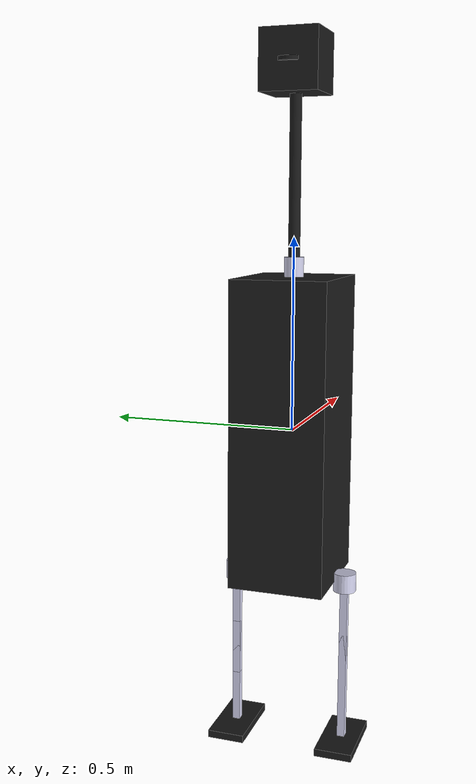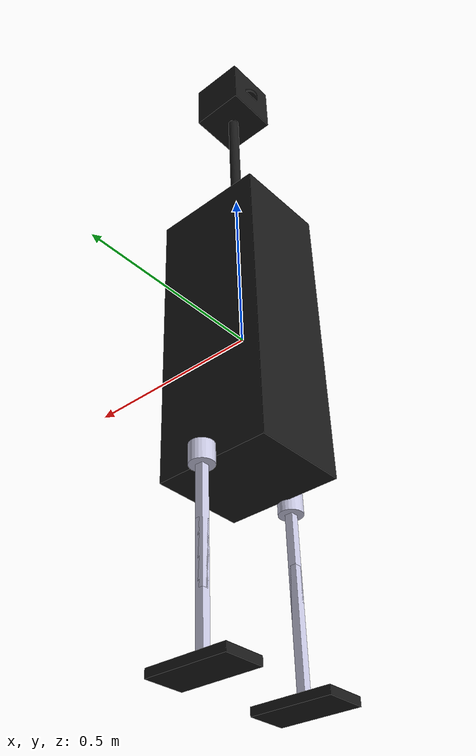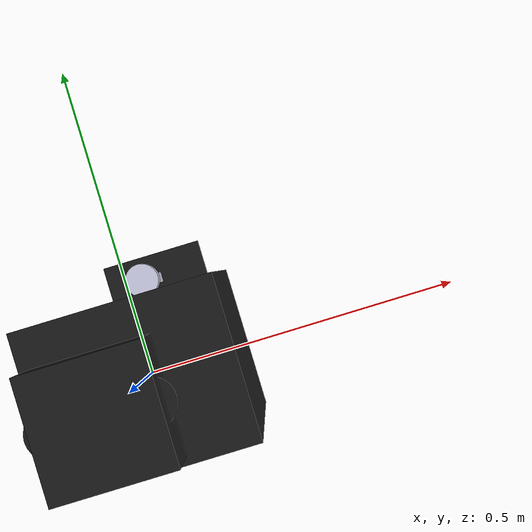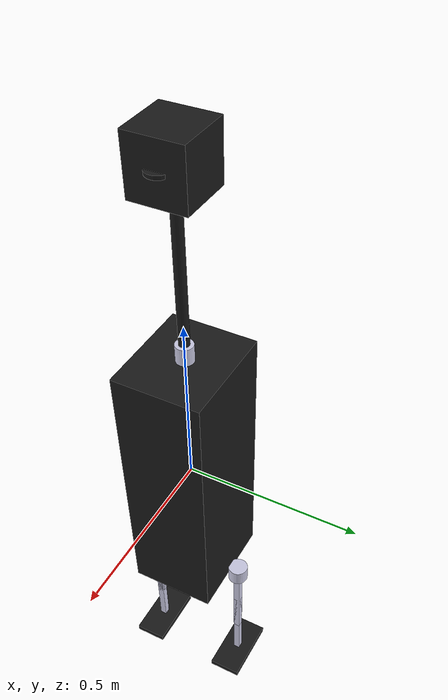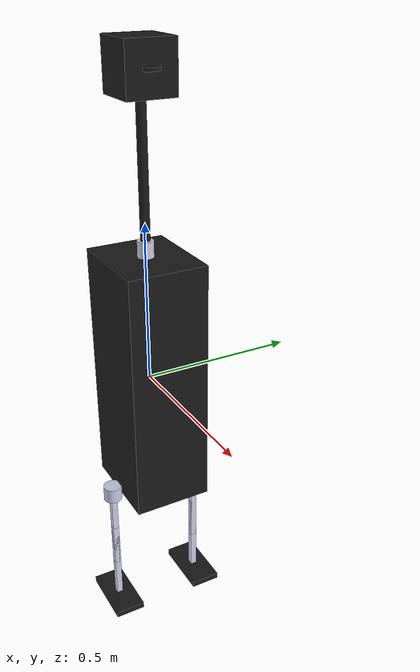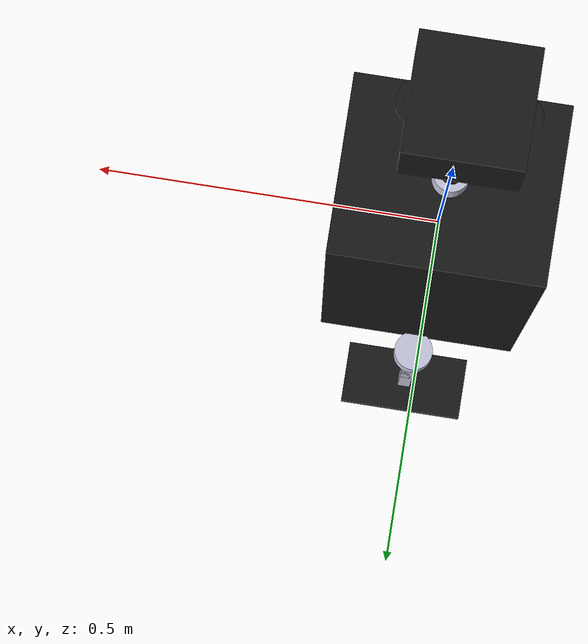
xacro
<?xml version="1.0"?>
<robot name="emu_droid" xmlns:xacro="http://www.ros.org/wiki/xacro">

  <!-- Properties and Constants -->
  <xacro:property name="M_PI" value="3.14159265359"/>
  <xacro:property name="body_height" value="0.8"/>
  <xacro:property name="body_width" value="0.3"/>
  <xacro:property name="body_depth" value="0.25"/>
  <xacro:property name="leg_length" value="0.6"/>
  <xacro:property name="foot_size" value="0.2"/>
  <xacro:property name="neck_length" value="0.4"/>
  <xacro:property name="head_size" value="0.15"/>
  <xacro:property name="eye_baseline" value="0.12"/>

  <!-- Material Definitions -->
  <material name="aluminum">
    <color rgba="0.8 0.8 0.9 1.0"/>
  </material>

  <material name="black_plastic">
    <color rgba="0.1 0.1 0.1 1.0"/>
  </material>

  <material name="camera_black">
    <color rgba="0.0 0.0 0.0 1.0"/>
  </material>

  <material name="servo_blue">
    <color rgba="0.0 0.3 0.8 1.0"/>
  </material>

  <!-- Macro for 2020 Aluminum Extrusion -->
  <xacro:macro name="aluminum_beam" params="name length">
    <link name="${name}">
      <visual>
        <geometry>
          <box size="0.02 0.02 ${length}"/>
        </geometry>
        <material name="aluminum"/>
      </visual>
      <collision>
        <geometry>
          <box size="0.02 0.02 ${length}"/>
        </geometry>
      </collision>
      <inertial>
        <mass value="0.1"/>
        <inertia ixx="0.001" iyy="0.001" izz="0.001" ixy="0" ixz="0" iyz="0"/>
      </inertial>
    </link>
  </xacro:macro>

  <!-- Macro for SG90 Servo -->
  <xacro:macro name="sg90_servo" params="name">
    <link name="${name}">
      <visual>
        <geometry>
          <box size="0.023 0.012 0.029"/>
        </geometry>
        <material name="servo_blue"/>
      </visual>
      <collision>
        <geometry>
          <box size="0.023 0.012 0.029"/>
        </geometry>
      </collision>
      <inertial>
        <mass value="0.009"/>
        <inertia ixx="0.00001" iyy="0.00001" izz="0.00001" ixy="0" ixz="0" iyz="0"/>
      </inertial>
    </link>
  </xacro:macro>

  <!-- Base Link (Main Body) -->
  <link name="base_link">
    <visual>
      <geometry>
        <box size="${body_width} ${body_depth} ${body_height}"/>
      </geometry>
      <material name="black_plastic"/>
    </visual>
    <collision>
      <geometry>
        <box size="${body_width} ${body_depth} ${body_height}"/>
      </geometry>
    </collision>
    <inertial>
      <mass value="5.0"/>
      <inertia ixx="0.5" iyy="0.5" izz="0.3" ixy="0" ixz="0" iyz="0"/>
      <origin xyz="0 0 0"/>
    </inertial>
  </link>

  <!-- Left Leg Assembly -->
  <link name="left_hip">
    <visual>
      <origin xyz="0 0 0" rpy="0 0 0"/>
      <geometry>
        <cylinder radius="0.03" length="0.05"/>
      </geometry>
      <material name="aluminum"/>
    </visual>
    <collision>
      <geometry>
        <cylinder radius="0.03" length="0.05"/>
      </geometry>
    </collision>
    <inertial>
      <mass value="0.2"/>
      <inertia ixx="0.001" iyy="0.001" izz="0.001" ixy="0" ixz="0" iyz="0"/>
    </inertial>
  </link>

  <!-- Left Upper Leg (2020 Aluminum) -->
  <xacro:aluminum_beam name="left_upper_leg" length="${leg_length/2}"/>

  <!-- Left Lower Leg (2020 Aluminum) -->
  <xacro:aluminum_beam name="left_lower_leg" length="${leg_length/2}"/>

  <!-- Left Foot -->
  <link name="left_foot">
    <visual>
      <geometry>
        <box size="${foot_size} ${foot_size/2} 0.02"/>
      </geometry>
      <material name="black_plastic"/>
    </visual>
    <collision>
      <geometry>
        <box size="${foot_size} ${foot_size/2} 0.02"/>
      </geometry>
    </collision>
    <inertial>
      <mass value="0.3"/>
      <inertia ixx="0.001" iyy="0.001" izz="0.001" ixy="0" ixz="0" iyz="0"/>
    </inertial>
  </link>

  <!-- Right Leg Assembly (Mirror of Left) -->
  <link name="right_hip">
    <visual>
      <origin xyz="0 0 0" rpy="0 0 0"/>
      <geometry>
        <cylinder radius="0.03" length="0.05"/>
      </geometry>
      <material name="aluminum"/>
    </visual>
    <collision>
      <geometry>
        <cylinder radius="0.03" length="0.05"/>
      </geometry>
    </collision>
    <inertial>
      <mass value="0.2"/>
      <inertia ixx="0.001" iyy="0.001" izz="0.001" ixy="0" ixz="0" iyz="0"/>
    </inertial>
  </link>

  <xacro:aluminum_beam name="right_upper_leg" length="${leg_length/2}"/>
  <xacro:aluminum_beam name="right_lower_leg" length="${leg_length/2}"/>

  <link name="right_foot">
    <visual>
      <geometry>
        <box size="${foot_size} ${foot_size/2} 0.02"/>
      </geometry>
      <material name="black_plastic"/>
    </visual>
    <collision>
      <geometry>
        <box size="${foot_size} ${foot_size/2} 0.02"/>
      </geometry>
    </collision>
    <inertial>
      <mass value="0.3"/>
      <inertia ixx="0.001" iyy="0.001" izz="0.001" ixy="0" ixz="0" iyz="0"/>
    </inertial>
  </link>

  <!-- Neck Assembly -->
  <link name="neck_base">
    <visual>
      <geometry>
        <cylinder radius="0.025" length="0.05"/>
      </geometry>
      <material name="aluminum"/>
    </visual>
    <collision>
      <geometry>
        <cylinder radius="0.025" length="0.05"/>
      </geometry>
    </collision>
    <inertial>
      <mass value="0.1"/>
      <inertia ixx="0.001" iyy="0.001" izz="0.001" ixy="0" ixz="0" iyz="0"/>
    </inertial>
  </link>

  <link name="neck_segment">
    <visual>
      <geometry>
        <cylinder radius="0.015" length="${neck_length}"/>
      </geometry>
      <material name="black_plastic"/>
    </visual>
    <collision>
      <geometry>
        <cylinder radius="0.015" length="${neck_length}"/>
      </geometry>
    </collision>
    <inertial>
      <mass value="0.2"/>
      <inertia ixx="0.001" iyy="0.001" izz="0.001" ixy="0" ixz="0" iyz="0"/>
    </inertial>
  </link>

  <!-- Head Assembly -->
  <link name="head">
    <visual>
      <geometry>
        <box size="${head_size} ${head_size} ${head_size}"/>
      </geometry>
      <material name="black_plastic"/>
    </visual>
    <collision>
      <geometry>
        <box size="${head_size} ${head_size} ${head_size}"/>
      </geometry>
    </collision>
    <inertial>
      <mass value="0.8"/>
      <inertia ixx="0.01" iyy="0.01" izz="0.01" ixy="0" ixz="0" iyz="0"/>
    </inertial>
  </link>

  <!-- Left Eye Assembly -->
  <link name="left_eye_platform">
    <visual>
      <geometry>
        <cylinder radius="0.03" length="0.01"/>
      </geometry>
      <material name="black_plastic"/>
    </visual>
    <collision>
      <geometry>
        <cylinder radius="0.03" length="0.01"/>
      </geometry>
    </collision>
    <inertial>
      <mass value="0.05"/>
      <inertia ixx="0.0001" iyy="0.0001" izz="0.0001" ixy="0" ixz="0" iyz="0"/>
    </inertial>
  </link>

  <link name="left_camera">
    <visual>
      <origin xyz="0 0 0" rpy="0 0 0"/>
      <geometry>
        <box size="0.025 0.025 0.009"/>
      </geometry>
      <material name="camera_black"/>
    </visual>
    <collision>
      <geometry>
        <box size="0.025 0.025 0.009"/>
      </geometry>
    </collision>
    <inertial>
      <mass value="0.003"/>
      <inertia ixx="0.00001" iyy="0.00001" izz="0.00001" ixy="0" ixz="0" iyz="0"/>
    </inertial>
  </link>

  <!-- Right Eye Assembly -->
  <link name="right_eye_platform">
    <visual>
      <geometry>
        <cylinder radius="0.03" length="0.01"/>
      </geometry>
      <material name="black_plastic"/>
    </visual>
    <collision>
      <geometry>
        <cylinder radius="0.03" length="0.01"/>
      </geometry>
    </collision>
    <inertial>
      <mass value="0.05"/>
      <inertia ixx="0.0001" iyy="0.0001" izz="0.0001" ixy="0" ixz="0" iyz="0"/>
    </inertial>
  </link>

  <link name="right_camera">
    <visual>
      <origin xyz="0 0 0" rpy="0 0 0"/>
      <geometry>
        <box size="0.025 0.025 0.009"/>
      </geometry>
      <material name="camera_black"/>
    </visual>
    <collision>
      <geometry>
        <box size="0.025 0.025 0.009"/>
      </geometry>
    </collision>
    <inertial>
      <mass value="0.003"/>
      <inertia ixx="0.00001" iyy="0.00001" izz="0.00001" ixy="0" ixz="0" iyz="0"/>
    </inertial>
  </link>

  <!-- Joint Definitions -->

  <!-- Hip Joints -->
  <joint name="left_hip_joint" type="revolute">
    <parent link="base_link"/>
    <child link="left_hip"/>
    <origin xyz="0 ${body_depth/2 + 0.025} ${-body_height/2}" rpy="0 0 0"/>
    <axis xyz="1 0 0"/>
    <limit lower="-1.57" upper="1.57" effort="10" velocity="5"/>
  </joint>

  <joint name="right_hip_joint" type="revolute">
    <parent link="base_link"/>
    <child link="right_hip"/>
    <origin xyz="0 ${-body_depth/2 - 0.025} ${-body_height/2}" rpy="0 0 0"/>
    <axis xyz="1 0 0"/>
    <limit lower="-1.57" upper="1.57" effort="10" velocity="5"/>
  </joint>

  <!-- Knee Joints -->
  <joint name="left_knee_joint" type="revolute">
    <parent link="left_hip"/>
    <child link="left_upper_leg"/>
    <origin xyz="0 0 ${-leg_length/4}" rpy="0 0 0"/>
    <axis xyz="1 0 0"/>
    <limit lower="-2.0" upper="0.1" effort="10" velocity="5"/>
  </joint>

  <joint name="right_knee_joint" type="revolute">
    <parent link="right_hip"/>
    <child link="right_upper_leg"/>
    <origin xyz="0 0 ${-leg_length/4}" rpy="0 0 0"/>
    <axis xyz="1 0 0"/>
    <limit lower="-2.0" upper="0.1" effort="10" velocity="5"/>
  </joint>

  <!-- Ankle Joints -->
  <joint name="left_ankle_joint" type="revolute">
    <parent link="left_upper_leg"/>
    <child link="left_lower_leg"/>
    <origin xyz="0 0 ${-leg_length/4}" rpy="0 0 0"/>
    <axis xyz="1 0 0"/>
    <limit lower="-0.5" upper="1.5" effort="10" velocity="5"/>
  </joint>

  <joint name="right_ankle_joint" type="revolute">
    <parent link="right_upper_leg"/>
    <child link="right_lower_leg"/>
    <origin xyz="0 0 ${-leg_length/4}" rpy="0 0 0"/>
    <axis xyz="1 0 0"/>
    <limit lower="-0.5" upper="1.5" effort="10" velocity="5"/>
  </joint>

  <!-- Foot Joints -->
  <joint name="left_foot_joint" type="revolute">
    <parent link="left_lower_leg"/>
    <child link="left_foot"/>
    <origin xyz="0 0 ${-leg_length/4}" rpy="0 0 0"/>
    <axis xyz="1 0 0"/>
    <limit lower="-0.5" upper="0.5" effort="5" velocity="5"/>
  </joint>

  <joint name="right_foot_joint" type="revolute">
    <parent link="right_lower_leg"/>
    <child link="right_foot"/>
    <origin xyz="0 0 ${-leg_length/4}" rpy="0 0 0"/>
    <axis xyz="1 0 0"/>
    <limit lower="-0.5" upper="0.5" effort="5" velocity="5"/>
  </joint>

  <!-- Neck Joints -->
  <joint name="neck_base_joint" type="revolute">
    <parent link="base_link"/>
    <child link="neck_base"/>
    <origin xyz="0 0 ${body_height/2 + 0.025}" rpy="0 0 0"/>
    <axis xyz="0 0 1"/>
    <limit lower="-1.57" upper="1.57" effort="5" velocity="2"/>
  </joint>

  <joint name="neck_joint" type="continuous">
    <parent link="neck_base"/>
    <child link="neck_segment"/>
    <origin xyz="0 0 ${neck_length/2 + 0.025}" rpy="0 0 0"/>
    <axis xyz="0 1 0"/>
  </joint>

  <!-- Head Joint -->
  <joint name="head_joint" type="revolute">
    <parent link="neck_segment"/>
    <child link="head"/>
    <origin xyz="0 0 ${neck_length/2 + head_size/2}" rpy="0 0 0"/>
    <axis xyz="0 1 0"/>
    <limit lower="-0.785" upper="0.785" effort="2" velocity="2"/>
  </joint>

  <!-- Eye Platform Joints (Stewart Platform Simulation) -->
  <joint name="left_eye_joint" type="revolute">
    <parent link="head"/>
    <child link="left_eye_platform"/>
    <origin xyz="${-eye_baseline/2} 0 0" rpy="0 0 0"/>
    <axis xyz="0 1 0"/>
    <limit lower="-0.3" upper="0.3" effort="1" velocity="2"/>
  </joint>

  <joint name="right_eye_joint" type="revolute">
    <parent link="head"/>
    <child link="right_eye_platform"/>
    <origin xyz="${eye_baseline/2} 0 0" rpy="0 0 0"/>
    <axis xyz="0 1 0"/>
    <limit lower="-0.3" upper="0.3" effort="1" velocity="2"/>
  </joint>

  <!-- Camera Joints -->
  <joint name="left_camera_joint" type="fixed">
    <parent link="left_eye_platform"/>
    <child link="left_camera"/>
    <origin xyz="0 0 0.015" rpy="0 0 0"/>
  </joint>

  <joint name="right_camera_joint" type="fixed">
    <parent link="right_eye_platform"/>
    <child link="right_camera"/>
    <origin xyz="0 0 0.015" rpy="0 0 0"/>
  </joint>

  <!-- Gazebo-specific elements -->
  <gazebo reference="base_link">
    <material>Gazebo/DarkGrey</material>
  </gazebo>

  <gazebo reference="left_camera">
    <sensor type="camera" name="left_camera">
      <update_rate>30.0</update_rate>
      <camera name="left">
        <horizontal_fov>1.085</horizontal_fov>
        <image>
          <width>1920</width>
          <height>1080</height>
          <format>R8G8B8</format>
        </image>
        <clip>
          <near>0.02</near>
          <far>300</far>
        </clip>
      </camera>
      <plugin name="left_camera_controller" filename="libgazebo_ros_camera.so">
        <alwaysOn>true</alwaysOn>
        <updateRate>0.0</updateRate>
        <cameraName>camera/left</cameraName>
        <imageTopicName>image_raw</imageTopicName>
        <cameraInfoTopicName>camera_info</cameraInfoTopicName>
        <frameName>left_camera_optical_frame</frameName>
        <hackBaseline>0.12</hackBaseline>
        <distortionK1>0.0</distortionK1>
        <distortionK2>0.0</distortionK2>
        <distortionK3>0.0</distortionK3>
        <distortionT1>0.0</distortionT1>
        <distortionT2>0.0</distortionT2>
      </plugin>
    </sensor>
  </gazebo>

  <gazebo reference="right_camera">
    <sensor type="camera" name="right_camera">
      <update_rate>30.0</update_rate>
      <camera name="right">
        <horizontal_fov>1.085</horizontal_fov>
        <image>
          <width>1920</width>
          <height>1080</height>
          <format>R8G8B8</format>
        </image>
        <clip>
          <near>0.02</near>
          <far>300</far>
        </clip>
      </camera>
      <plugin name="right_camera_controller" filename="libgazebo_ros_camera.so">
        <alwaysOn>true</alwaysOn>
        <updateRate>0.0</updateRate>
        <cameraName>camera/right</cameraName>
        <imageTopicName>image_raw</imageTopicName>
        <cameraInfoTopicName>camera_info</cameraInfoTopicName>
        <frameName>right_camera_optical_frame</frameName>
        <hackBaseline>0.12</hackBaseline>
        <distortionK1>0.0</distortionK1>
        <distortionK2>0.0</distortionK2>
        <distortionK3>0.0</distortionK3>
        <distortionT1>0.0</distortionT1>
        <distortionT2>0.0</distortionT2>
      </plugin>
    </sensor>
  </gazebo>

  <!-- ROS 2 Control -->
  <ros2_control name="emu_droid_system" type="system">
    <hardware>
      <plugin>gazebo_ros2_control/GazeboSystem</plugin>
    </hardware>

    <!-- Joint interfaces for leg control -->
    <joint name="left_hip_joint">
      <command_interface name="position">
        <param name="min">-1.57</param>
        <param name="max">1.57</param>
      </command_interface>
      <state_interface name="position"/>
      <state_interface name="velocity"/>
    </joint>

    <joint name="left_knee_joint">
      <command_interface name="position">
        <param name="min">-2.0</param>
        <param name="max">0.1</param>
      </command_interface>
      <state_interface name="position"/>
      <state_interface name="velocity"/>
    </joint>

    <joint name="left_ankle_joint">
      <command_interface name="position">
        <param name="min">-0.5</param>
        <param name="max">1.5</param>
      </command_interface>
      <state_interface name="position"/>
      <state_interface name="velocity"/>
    </joint>

    <joint name="right_hip_joint">
      <command_interface name="position">
        <param name="min">-1.57</param>
        <param name="max">1.57</param>
      </command_interface>
      <state_interface name="position"/>
      <state_interface name="velocity"/>
    </joint>

    <joint name="right_knee_joint">
      <command_interface name="position">
        <param name="min">-2.0</param>
        <param name="max">0.1</param>
      </command_interface>
      <state_interface name="position"/>
      <state_interface name="velocity"/>
    </joint>

    <joint name="right_ankle_joint">
      <command_interface name="position">
        <param name="min">-0.5</param>
        <param name="max">1.5</param>
      </command_interface>
      <state_interface name="position"/>
      <state_interface name="velocity"/>
    </joint>

    <!-- Neck and head control -->
    <joint name="neck_base_joint">
      <command_interface name="position"/>
      <state_interface name="position"/>
      <state_interface name="velocity"/>
    </joint>

    <joint name="head_joint">
      <command_interface name="position"/>
      <state_interface name="position"/>
      <state_interface name="velocity"/>
    </joint>

    <!-- Eye platform control -->
    <joint name="left_eye_joint">
      <command_interface name="position"/>
      <state_interface name="position"/>
      <state_interface name="velocity"/>
    </joint>

    <joint name="right_eye_joint">
      <command_interface name="position"/>
      <state_interface name="position"/>
      <state_interface name="velocity"/>
    </joint>
  </ros2_control>

  <gazebo>
    <plugin filename="libgazebo_ros2_control.so" name="gazebo_ros2_control">
      <!-- TODO: Create emu_control package with controller config -->
    </plugin>
  </gazebo>

</robot>
